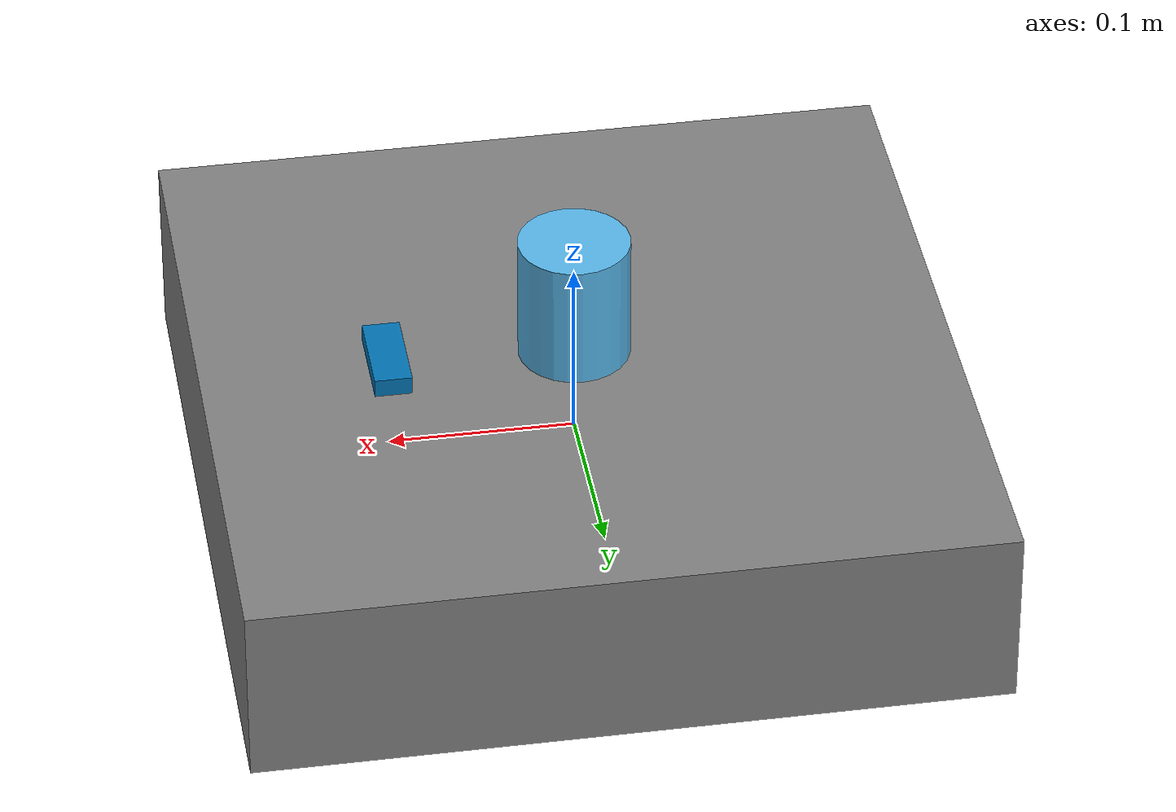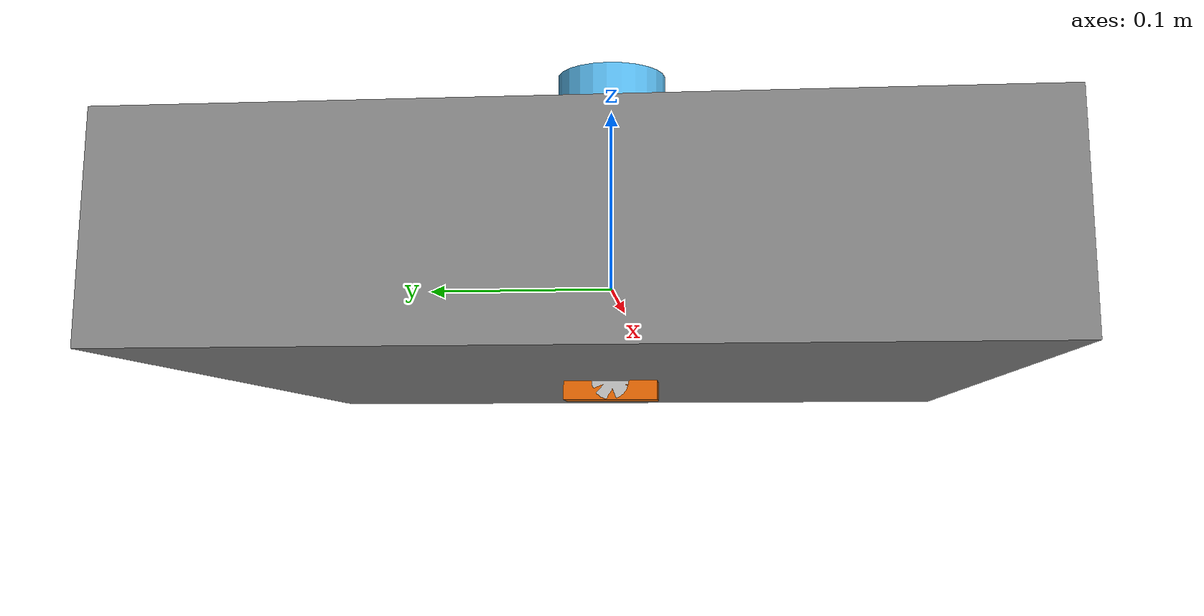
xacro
<?xml version="1.0"?>
<robot name="x500" xmlns:xacro="http://ros.org/wiki/xacro">
  <xacro:arg name="namespace" default="uav_0"/>

  <!-- Base Link -->
  <link name="$(arg namespace)/base_link">
    <visual>
      <origin xyz="0 0 0" rpy="0 0 0"/>
      <geometry>
        <box size="0.4 0.4 0.1"/>
      </geometry>
      <material name="grey">
        <color rgba="0.5 0.5 0.5 1.0"/>
      </material>
    </visual>
  </link>

  <!-- Lidar Link -->
  <link name="$(arg namespace)/lidar_link">
    <visual>
      <origin xyz="0 0 0" rpy="0 0 0"/>
      <geometry><cylinder length="0.08" radius="0.03"/></geometry>
    </visual>
  </link>
  <joint name="$(arg namespace)/lidar_joint" type="fixed">
    <parent link="$(arg namespace)/base_link"/>
    <child link="$(arg namespace)/lidar_link"/>
    <origin xyz="0 0 0.08" rpy="0 0 0"/>
  </joint>

  <!-- Lidar Spin (Fixed for URDF Vis) -->
  <link name="$(arg namespace)/lidar_spin_link"/>
  <joint name="$(arg namespace)/lidar_spin_joint" type="fixed">
    <parent link="$(arg namespace)/lidar_link"/>
    <child link="$(arg namespace)/lidar_spin_link"/>
    <origin xyz="0 0 0" rpy="0 0 0"/>
  </joint>

  <!-- Lidar Sensor Frame (Matches Gazebo Frame ID) -->
  <!-- Note: Gazebo frame is uav_X/lidar_spin_link/lidar_3d.
       If we prefix, we get uav_X/lidar_spin_link/lidar_3d because we want the exact string. -->
  <link name="$(arg namespace)/lidar_spin_link/lidar_3d"/>
  <joint name="$(arg namespace)/lidar_sensor_joint" type="fixed">
    <parent link="$(arg namespace)/lidar_spin_link"/>
    <child link="$(arg namespace)/lidar_spin_link/lidar_3d"/>
    <origin xyz="0 0 0" rpy="0 0 0"/>
  </joint>

  <!-- Camera Link (Front) -->
  <link name="$(arg namespace)/camera_link">
    <visual>
      <geometry><box size="0.02 0.05 0.02"/></geometry>
    </visual>
  </link>
  <joint name="$(arg namespace)/camera_joint" type="fixed">
    <parent link="$(arg namespace)/base_link"/>
    <child link="$(arg namespace)/camera_link"/>
    <origin xyz="0.1 0 0.05" rpy="0 0 0"/>
  </joint>

  <!-- Down Camera Link -->
  <link name="$(arg namespace)/down_camera_link">
     <visual>
      <geometry><box size="0.02 0.05 0.02"/></geometry>
    </visual>
  </link>
  <joint name="$(arg namespace)/down_camera_joint" type="fixed">
    <parent link="$(arg namespace)/base_link"/>
    <child link="$(arg namespace)/down_camera_link"/>
    <origin xyz="0 0 -0.05" rpy="0 1.5708 0"/>
  </joint>

  <!-- IMU Link -->
  <link name="$(arg namespace)/imu_link"/>
  <joint name="$(arg namespace)/imu_joint" type="fixed">
    <parent link="$(arg namespace)/base_link"/>
    <child link="$(arg namespace)/imu_link"/>
    <origin xyz="0 0 0" rpy="0 0 0"/>
  </joint>

  <!-- Downward Lidar Link -->
  <link name="$(arg namespace)/lidar_down_link">
     <visual>
      <geometry><cylinder length="0.02" radius="0.01"/></geometry>
    </visual>
  </link>
  <joint name="$(arg namespace)/lidar_down_joint" type="fixed">
    <parent link="$(arg namespace)/base_link"/>
    <child link="$(arg namespace)/lidar_down_link"/>
    <origin xyz="0 0 -0.05" rpy="0 1.5708 0"/>
  </joint>

  <!-- Downward Lidar Sensor Frame (Matches Gazebo Frame ID) -->
  <link name="$(arg namespace)/lidar_down_link/lidar_down"/>
  <joint name="$(arg namespace)/lidar_down_sensor_joint" type="fixed">
    <parent link="$(arg namespace)/lidar_down_link"/>
    <child link="$(arg namespace)/lidar_down_link/lidar_down"/>
    <origin xyz="0 0 0" rpy="0 0 0"/>
  </joint>

  <!-- GPS Link -->
  <link name="$(arg namespace)/gps_link">
    <visual>
      <geometry><box size="0.01 0.01 0.01"/></geometry>
    </visual>
  </link>
  <joint name="$(arg namespace)/gps_joint" type="fixed">
    <parent link="$(arg namespace)/base_link"/>
    <child link="$(arg namespace)/gps_link"/>
    <origin xyz="0 0 0" rpy="0 0 0"/>
  </joint>

</robot>
